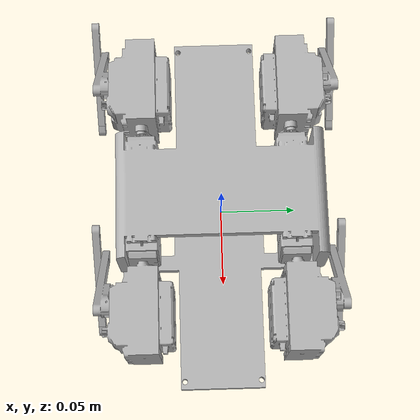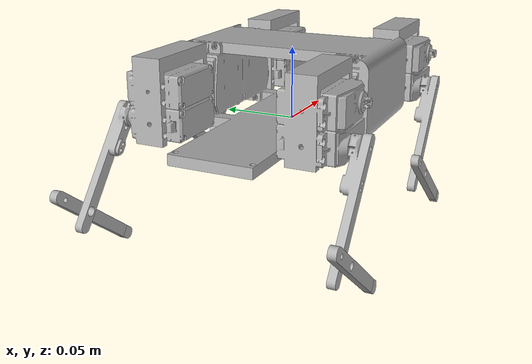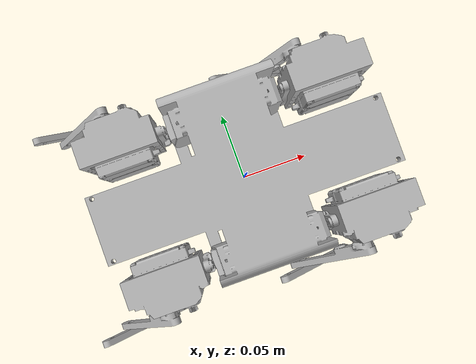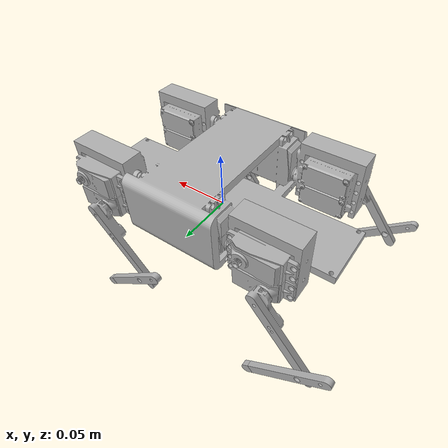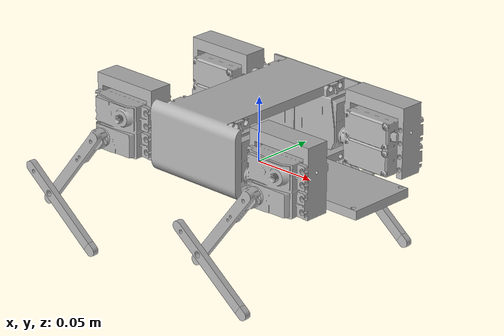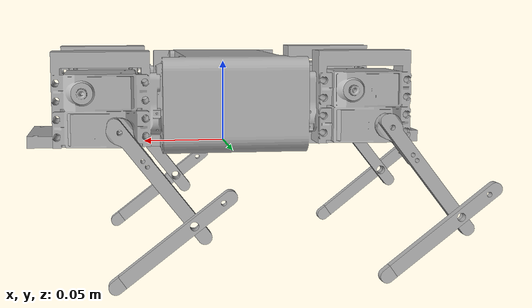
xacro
<?xml version="1.0" ?>
<robot name="robot_sim" xmlns:xacro="http://www.ros.org/wiki/xacro">

<xacro:include filename="$(find robot_sim_description)/urdf/materials.xacro" />
<xacro:include filename="$(find robot_sim_description)/urdf/robot_sim.trans" />
<xacro:include filename="$(find robot_sim_description)/urdf/robot_sim.gazebo" />
<link name="base_link">
  <inertial>
    <origin xyz="-0.0005252204596031618 -0.00019184175566821615 0.02372203813710473" rpy="0 0 0"/>
    <mass value="1.0"/>
    <inertia ixx="0.006081" iyy="0.005366" izz="0.00968" ixy="1e-06" iyz="-2.7e-05" ixz="1.4e-05"/>
  </inertial>
  <visual>
    <origin xyz="0 0 0" rpy="0 0 0"/>
    <geometry>
      <mesh filename="package://robot_sim_description/meshes/base_link.stl" scale="0.001 0.001 0.001"/>
    </geometry>
    <material name="silver"/>
  </visual>
  <collision>
    <origin xyz="0 0 0" rpy="0 0 0"/>
    <geometry>
      <mesh filename="package://robot_sim_description/meshes/base_link.stl" scale="0.001 0.001 0.001"/>
    </geometry>
  </collision>
</link>

<link name="lf_hipp_1">
  <inertial>
    <origin xyz="0.03015331538259277 0.002186531069731129 0.011451897963831191" rpy="0 0 0"/>
    <mass value="0.25"/>
    <inertia ixx="0.000207" iyy="0.000267" izz="0.000208" ixy="-1e-06" iyz="2e-06" ixz="-1e-06"/>
  </inertial>
  <visual>
    <origin xyz="-0.044687 -0.047373 -0.017674" rpy="0 0 0"/>
    <geometry>
      <mesh filename="package://robot_sim_description/meshes/lf_hipp_1.stl" scale="0.001 0.001 0.001"/>
    </geometry>
    <material name="silver"/>
  </visual>
  <collision>
    <origin xyz="-0.044687 -0.047373 -0.017674" rpy="0 0 0"/>
    <geometry>
      <mesh filename="package://robot_sim_description/meshes/lf_hipp_1.stl" scale="0.001 0.001 0.001"/>
    </geometry>
  </collision>
</link>

<link name="rf_hipp_1">
  <inertial>
    <origin xyz="0.03015037337157648 -0.0007413119719827249 0.011482275702380054" rpy="0 0 0"/>
    <mass value="0.25"/>
    <inertia ixx="0.000207" iyy="0.000267" izz="0.000208" ixy="0.0" iyz="-3e-06" ixz="-1e-06"/>
  </inertial>
  <visual>
    <origin xyz="-0.044687 0.051374 -0.017678" rpy="0 0 0"/>
    <geometry>
      <mesh filename="package://robot_sim_description/meshes/rf_hipp_1.stl" scale="0.001 0.001 0.001"/>
    </geometry>
    <material name="silver"/>
  </visual>
  <collision>
    <origin xyz="-0.044687 0.051374 -0.017678" rpy="0 0 0"/>
    <geometry>
      <mesh filename="package://robot_sim_description/meshes/rf_hipp_1.stl" scale="0.001 0.001 0.001"/>
    </geometry>
  </collision>
</link>

<link name="lh_hipp_1">
  <inertial>
    <origin xyz="-0.029856922704473474 0.0020206181030268666 0.011482293331725565" rpy="0 0 0"/>
    <mass value="0.25"/>
    <inertia ixx="0.000207" iyy="0.000267" izz="0.000208" ixy="1e-06" iyz="3e-06" ixz="0.0"/>
  </inertial>
  <visual>
    <origin xyz="0.046404 -0.047373 -0.017674" rpy="0 0 0"/>
    <geometry>
      <mesh filename="package://robot_sim_description/meshes/lh_hipp_1.stl" scale="0.001 0.001 0.001"/>
    </geometry>
    <material name="silver"/>
  </visual>
  <collision>
    <origin xyz="0.046404 -0.047373 -0.017674" rpy="0 0 0"/>
    <geometry>
      <mesh filename="package://robot_sim_description/meshes/lh_hipp_1.stl" scale="0.001 0.001 0.001"/>
    </geometry>
  </collision>
</link>

<link name="rh_hipp_1">
  <inertial>
    <origin xyz="-0.02985701671843094 -0.0007331831610426498 0.011482821283024747" rpy="0 0 0"/>
    <mass value="0.25"/>
    <inertia ixx="0.000207" iyy="0.000267" izz="0.000208" ixy="-0.0" iyz="-3e-06" ixz="0.0"/>
  </inertial>
  <visual>
    <origin xyz="0.046404 0.051374 -0.017678" rpy="0 0 0"/>
    <geometry>
      <mesh filename="package://robot_sim_description/meshes/rh_hipp_1.stl" scale="0.001 0.001 0.001"/>
    </geometry>
    <material name="silver"/>
  </visual>
  <collision>
    <origin xyz="0.046404 0.051374 -0.017678" rpy="0 0 0"/>
    <geometry>
      <mesh filename="package://robot_sim_description/meshes/rh_hipp_1.stl" scale="0.001 0.001 0.001"/>
    </geometry>
  </collision>
</link>

<link name="lf_up_1">
  <inertial>
    <origin xyz="-0.016419062921313177 0.003637269753796246 -0.02678707336544945" rpy="0 0 0"/>
    <mass value="0.0625"/>
    <inertia ixx="0.001" iyy="0.001" izz="0.001" ixy="0.0" iyz="0.0" ixz="0.0"/>
  </inertial>
  <visual>
    <origin xyz="-0.065361 -0.074642 -0.01539" rpy="0 0 0"/>
    <geometry>
      <mesh filename="package://robot_sim_description/meshes/lf_up_1.stl" scale="0.001 0.001 0.001"/>
    </geometry>
    <material name="silver"/>
  </visual>
  <collision>
    <origin xyz="-0.065361 -0.074642 -0.01539" rpy="0 0 0"/>
    <geometry>
      <mesh filename="package://robot_sim_description/meshes/lf_up_1.stl" scale="0.001 0.001 0.001"/>
    </geometry>
  </collision>
</link>

<link name="rf_up_1">
  <inertial>
    <origin xyz="-0.0164200310998035 -0.003944072054624034 -0.026733120225738486" rpy="0 0 0"/>
    <mass value="0.0625"/>
    <inertia ixx="0.001" iyy="0.001" izz="0.001" ixy="0.0" iyz="0.0" ixz="0.0"/>
  </inertial>
  <visual>
    <origin xyz="-0.065361 0.077374 -0.01579" rpy="0 0 0"/>
    <geometry>
      <mesh filename="package://robot_sim_description/meshes/rf_up_1.stl" scale="0.001 0.001 0.001"/>
    </geometry>
    <material name="silver"/>
  </visual>
  <collision>
    <origin xyz="-0.065361 0.077374 -0.01579" rpy="0 0 0"/>
    <geometry>
      <mesh filename="package://robot_sim_description/meshes/rf_up_1.stl" scale="0.001 0.001 0.001"/>
    </geometry>
  </collision>
</link>

<link name="lh_up_1">
  <inertial>
    <origin xyz="-0.016340315083238258 0.003944463350645688 -0.026737906931428364" rpy="0 0 0"/>
    <mass value="0.0625"/>
    <inertia ixx="0.001" iyy="0.001" izz="0.001" ixy="0.0" iyz="0.0" ixz="0.0"/>
  </inertial>
  <visual>
    <origin xyz="0.08673 -0.074672 -0.015786" rpy="0 0 0"/>
    <geometry>
      <mesh filename="package://robot_sim_description/meshes/lh_up_1.stl" scale="0.001 0.001 0.001"/>
    </geometry>
    <material name="silver"/>
  </visual>
  <collision>
    <origin xyz="0.08673 -0.074672 -0.015786" rpy="0 0 0"/>
    <geometry>
      <mesh filename="package://robot_sim_description/meshes/lh_up_1.stl" scale="0.001 0.001 0.001"/>
    </geometry>
  </collision>
</link>

<link name="rh_up_1">
  <inertial>
    <origin xyz="-0.016686433486496274 -0.003958453231412792 -0.026710968347183412" rpy="0 0 0"/>
    <mass value="0.0625"/>
    <inertia ixx="0.001" iyy="0.001" izz="0.001" ixy="0.0" iyz="0.0" ixz="0.0"/>
  </inertial>
  <visual>
    <origin xyz="0.08673 0.077375 -0.015807" rpy="0 0 0"/>
    <geometry>
      <mesh filename="package://robot_sim_description/meshes/rh_up_1.stl" scale="0.001 0.001 0.001"/>
    </geometry>
    <material name="silver"/>
  </visual>
  <collision>
    <origin xyz="0.08673 0.077375 -0.015807" rpy="0 0 0"/>
    <geometry>
      <mesh filename="package://robot_sim_description/meshes/rh_up_1.stl" scale="0.001 0.001 0.001"/>
    </geometry>
  </collision>
</link>

<link name="lf_foot_1">
  <inertial>
    <origin xyz="0.003146149042842633 -4.0777872519534575e-05 -0.0023908828751956906" rpy="0 0 0"/>
    <mass value="0.0625"/>
    <inertia ixx="0.0001" iyy="0.0001" izz="0.0001" ixy="-0.0" iyz="-0.0" ixz="0.0"/>
  </inertial>
  <visual>
    <origin xyz="-0.065198 -0.083946 0.067164" rpy="0 0 0"/>
    <geometry>
      <mesh filename="package://robot_sim_description/meshes/lf_foot_1.stl" scale="0.001 0.001 0.001"/>
    </geometry>
    <material name="silver"/>
  </visual>
  <collision>
    <origin xyz="-0.065198 -0.083946 0.067164" rpy="0 0 0"/>
    <geometry>
      <mesh filename="package://robot_sim_description/meshes/lf_foot_1.stl" scale="0.001 0.001 0.001"/>
    </geometry>
  </collision>
</link>

<link name="rf_foot_1">
  <inertial>
    <origin xyz="0.003146563459573884 5.3378327768291434e-05 -0.0023910133980219184" rpy="0 0 0"/>
    <mass value="0.0625"/>
    <inertia ixx="0.0001" iyy="0.0001" izz="0.0001" ixy="-0.0" iyz="0.0" ixz="0.0"/>
  </inertial>
  <visual>
    <origin xyz="-0.064738 0.087874 0.066283" rpy="0 0 0"/>
    <geometry>
      <mesh filename="package://robot_sim_description/meshes/rf_foot_1.stl" scale="0.001 0.001 0.001"/>
    </geometry>
    <material name="silver"/>
  </visual>
  <collision>
    <origin xyz="-0.064738 0.087874 0.066283" rpy="0 0 0"/>
    <geometry>
      <mesh filename="package://robot_sim_description/meshes/rf_foot_1.stl" scale="0.001 0.001 0.001"/>
    </geometry>
  </collision>
</link>

<link name="lh_foot_1">
  <inertial>
    <origin xyz="0.0031466132562136817 5.379185311012169e-05 -0.002390894290727974" rpy="0 0 0"/>
    <mass value="0.0625"/>
    <inertia ixx="0.0001" iyy="0.0001" izz="0.0001" ixy="-0.0" iyz="0.0" ixz="0.0"/>
  </inertial>
  <visual>
    <origin xyz="0.08771 -0.085172 0.066059" rpy="0 0 0"/>
    <geometry>
      <mesh filename="package://robot_sim_description/meshes/lh_foot_1.stl" scale="0.001 0.001 0.001"/>
    </geometry>
    <material name="silver"/>
  </visual>
  <collision>
    <origin xyz="0.08771 -0.085172 0.066059" rpy="0 0 0"/>
    <geometry>
      <mesh filename="package://robot_sim_description/meshes/lh_foot_1.stl" scale="0.001 0.001 0.001"/>
    </geometry>
  </collision>
</link>

<link name="rh_foot_1">
  <inertial>
    <origin xyz="0.0031468710440486353 4.940379671491968e-05 -0.0023912075919742537" rpy="0 0 0"/>
    <mass value="0.0625"/>
    <inertia ixx="0.0001" iyy="0.0001" izz="0.0001" ixy="-0.0" iyz="0.0" ixz="0.0"/>
  </inertial>
  <visual>
    <origin xyz="0.088419 0.087931 0.066223" rpy="0 0 0"/>
    <geometry>
      <mesh filename="package://robot_sim_description/meshes/rh_foot_1.stl" scale="0.001 0.001 0.001"/>
    </geometry>
    <material name="silver"/>
  </visual>
  <collision>
    <origin xyz="0.088419 0.087931 0.066223" rpy="0 0 0"/>
    <geometry>
      <mesh filename="package://robot_sim_description/meshes/rh_foot_1.stl" scale="0.001 0.001 0.001"/>
    </geometry>
  </collision>
</link>

<link name="lf_low_1">
  <inertial>
    <origin xyz="0.009183069925470574 0.0023976567053376058 -0.007108956563643944" rpy="0 0 0"/>
    <mass value="0.125"/>
    <inertia ixx="0.001" iyy="0.001" izz="0.001" ixy="0.0" iyz="0.0" ixz="0.0"/>
  </inertial>
  <visual>
    <origin xyz="-0.025556 -0.08189 0.036525" rpy="0 0 0"/>
    <geometry>
      <mesh filename="package://robot_sim_description/meshes/lf_low_1.stl" scale="0.001 0.001 0.001"/>
    </geometry>
    <material name="silver"/>
  </visual>
  <collision>
    <origin xyz="-0.025556 -0.08189 0.036525" rpy="0 0 0"/>
    <geometry>
      <mesh filename="package://robot_sim_description/meshes/lf_low_1.stl" scale="0.001 0.001 0.001"/>
    </geometry>
  </collision>
</link>

<link name="rf_low_1">
  <inertial>
    <origin xyz="0.008957472165061098 -0.0025000107553799916 -0.006903547188052195" rpy="0 0 0"/>
    <mass value="0.125"/>
    <inertia ixx="0.001" iyy="0.001" izz="0.001" ixy="0.0" iyz="0.0" ixz="0.0"/>
  </inertial>
  <visual>
    <origin xyz="-0.025541 0.085374 0.036003" rpy="0 0 0"/>
    <geometry>
      <mesh filename="package://robot_sim_description/meshes/rf_low_1.stl" scale="0.001 0.001 0.001"/>
    </geometry>
    <material name="silver"/>
  </visual>
  <collision>
    <origin xyz="-0.025541 0.085374 0.036003" rpy="0 0 0"/>
    <geometry>
      <mesh filename="package://robot_sim_description/meshes/rf_low_1.stl" scale="0.001 0.001 0.001"/>
    </geometry>
  </collision>
</link>

<link name="lh_low_1">
  <inertial>
    <origin xyz="0.008946743217155245 0.0025004027699619402 -0.0069063248962129495" rpy="0 0 0"/>
    <mass value="0.125"/>
    <inertia ixx="0.001" iyy="0.001" izz="0.001" ixy="0.0" iyz="0.0" ixz="0.0"/>
  </inertial>
  <visual>
    <origin xyz="0.126873 -0.082672 0.035757" rpy="0 0 0"/>
    <geometry>
      <mesh filename="package://robot_sim_description/meshes/lh_low_1.stl" scale="0.001 0.001 0.001"/>
    </geometry>
    <material name="silver"/>
  </visual>
  <collision>
    <origin xyz="0.126873 -0.082672 0.035757" rpy="0 0 0"/>
    <geometry>
      <mesh filename="package://robot_sim_description/meshes/lh_low_1.stl" scale="0.001 0.001 0.001"/>
    </geometry>
  </collision>
</link>

<link name="rh_low_1">
  <inertial>
    <origin xyz="0.008855525446896786 -0.0025045709939809507 -0.0070043673693002545" rpy="0 0 0"/>
    <mass value="0.125"/>
    <inertia ixx="0.001" iyy="0.001" izz="0.001" ixy="0.0" iyz="0.0" ixz="0.0"/>
  </inertial>
  <visual>
    <origin xyz="0.127203 0.08541 0.035472" rpy="0 0 0"/>
    <geometry>
      <mesh filename="package://robot_sim_description/meshes/rh_low_1.stl" scale="0.001 0.001 0.001"/>
    </geometry>
    <material name="silver"/>
  </visual>
  <collision>
    <origin xyz="0.127203 0.08541 0.035472" rpy="0 0 0"/>
    <geometry>
      <mesh filename="package://robot_sim_description/meshes/rh_low_1.stl" scale="0.001 0.001 0.001"/>
    </geometry>
  </collision>
</link>

<joint name="lf_hip_joint" type="revolute">
  <origin xyz="0.044687 0.047373 0.017674" rpy="0 0 0"/>
  <parent link="base_link"/>
  <child link="lf_hipp_1"/>
  <axis xyz="1.0 0.0 0.0"/>
  <limit upper="0.57" lower="-0.57" effort="100" velocity="100"/>
</joint>

<joint name="rf_hip_joint" type="revolute">
  <origin xyz="0.044687 -0.051374 0.017678" rpy="0 0 0"/>
  <parent link="base_link"/>
  <child link="rf_hipp_1"/>
  <axis xyz="1.0 0.0 0.0"/>
  <limit upper="0.57" lower="-0.57" effort="100" velocity="100"/>
</joint>

<joint name="lh_hip_joint" type="revolute">
  <origin xyz="-0.046404 0.047373 0.017674" rpy="0 0 0"/>
  <parent link="base_link"/>
  <child link="lh_hipp_1"/>
  <axis xyz="1.0 0.0 0.0"/>
  <limit upper="0.57" lower="-0.57" effort="100" velocity="100"/>
</joint>

<joint name="rh_hip_joint" type="revolute">
  <origin xyz="-0.046404 -0.051374 0.017678" rpy="0 0 0"/>
  <parent link="base_link"/>
  <child link="rh_hipp_1"/>
  <axis xyz="1.0 0.0 0.0"/>
  <limit upper="0.57" lower="-0.57" effort="100" velocity="100"/>
</joint>

<joint name="lf_upper_leg_joint" type="revolute">
  <origin xyz="0.020674 0.027269 -0.002284" rpy="0 0 0"/>
  <parent link="lf_hipp_1"/>
  <child link="lf_up_1"/>
  <axis xyz="0.0 1.0 0.0"/>
  <limit upper="0.62" lower="-0.62" effort="100" velocity="100"/>
</joint>

<joint name="rf_upper_leg_joint" type="revolute">
  <origin xyz="0.020674 -0.026 -0.001888" rpy="0 0 0"/>
  <parent link="rf_hipp_1"/>
  <child link="rf_up_1"/>
  <axis xyz="0.0 1.0 0.0"/>
  <limit upper="0.62" lower="-0.62" effort="100" velocity="100"/>
</joint>

<joint name="lh_upper_leg_joint" type="revolute">
  <origin xyz="-0.040326 0.027299 -0.001888" rpy="0 0 0"/>
  <parent link="lh_hipp_1"/>
  <child link="lh_up_1"/>
  <axis xyz="0.0 1.0 0.0"/>
  <limit upper="0.62" lower="-0.62" effort="100" velocity="100"/>
</joint>

<joint name="rh_upper_leg_joint" type="revolute">
  <origin xyz="-0.040326 -0.026001 -0.001871" rpy="0 0 0"/>
  <parent link="rh_hipp_1"/>
  <child link="rh_up_1"/>
  <axis xyz="0.0 1.0 0.0"/>
  <limit upper="0.62" lower="-0.62" effort="100" velocity="100"/>
</joint>

<joint name="rig_lf" type="fixed">
  <origin xyz="0.039642 0.002056 -0.030639" rpy="0 0 0"/>
  <parent link="lf_low_1"/>
  <child link="lf_foot_1"/>
</joint>

<joint name="rig_rf" type="fixed">
  <origin xyz="0.039197 -0.0025 -0.03028" rpy="0 0 0"/>
  <parent link="rf_low_1"/>
  <child link="rf_foot_1"/>
</joint>

<joint name="rig_lh" type="fixed">
  <origin xyz="0.039163 0.0025 -0.030302" rpy="0 0 0"/>
  <parent link="lh_low_1"/>
  <child link="lh_foot_1"/>
</joint>

<joint name="rig_rh" type="fixed">
  <origin xyz="0.038784 -0.002521 -0.030751" rpy="0 0 0"/>
  <parent link="rh_low_1"/>
  <child link="rh_foot_1"/>
</joint>

<joint name="lf_lower_leg_joint" type="revolute">
  <origin xyz="-0.039805 0.007248 -0.051915" rpy="0 0 0"/>
  <parent link="lf_up_1"/>
  <child link="lf_low_1"/>
  <axis xyz="0.0 -1.0 0.0"/>
  <limit upper="0.610865" lower="-0.610865" effort="100" velocity="100"/>
</joint>

<joint name="rf_lower_leg_joint" type="revolute">
  <origin xyz="-0.03982 -0.008 -0.051793" rpy="0 0 0"/>
  <parent link="rf_up_1"/>
  <child link="rf_low_1"/>
  <axis xyz="0.0 1.0 0.0"/>
  <limit upper="0.610865" lower="-0.610865" effort="100" velocity="100"/>
</joint>

<joint name="lh_lower_leg_joint" type="revolute">
  <origin xyz="-0.040143 0.008 -0.051543" rpy="0 0 0"/>
  <parent link="lh_up_1"/>
  <child link="lh_low_1"/>
  <axis xyz="0.0 -1.0 0.0"/>
  <limit upper="0.610865" lower="-0.610865" effort="100" velocity="100"/>
</joint>

<joint name="rh_lower_leg_joint" type="revolute">
  <origin xyz="-0.040473 -0.008035 -0.051279" rpy="0 0 0"/>
  <parent link="rh_up_1"/>
  <child link="rh_low_1"/>
  <axis xyz="0.0 1.0 0.0"/>
  <limit upper="0.610865" lower="-0.610865" effort="100" velocity="100"/>
</joint>

</robot>

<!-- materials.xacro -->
<robot name="robot_sim" xmlns:xacro="http://www.ros.org/wiki/xacro" >

<material name="silver">
  <color rgba="0.700 0.700 0.700 1.000"/>
</material>

</robot>

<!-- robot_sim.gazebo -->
<robot name="robot_sim" xmlns:xacro="http://www.ros.org/wiki/xacro" >

<xacro:property name="body_color" value="Gazebo/Silver" />

<gazebo>
  <plugin name="control" filename="libgazebo_ros_control.so"/>
</gazebo>
<gazebo reference="base_link">
  <material>${body_color}</material>
  <mu1>0.2</mu1>
  <mu2>0.2</mu2>
  <selfCollide>false</selfCollide>
  <gravity>true</gravity>
</gazebo>

<gazebo reference="lf_hipp_1">
  <material>${body_color}</material>
  <mu1>0.2</mu1>
  <mu2>0.2</mu2>
  <selfCollide>false</selfCollide>
</gazebo>

<gazebo reference="rf_hipp_1">
  <material>${body_color}</material>
  <mu1>0.2</mu1>
  <mu2>0.2</mu2>
  <selfCollide>false</selfCollide>
</gazebo>

<gazebo reference="lh_hipp_1">
  <material>${body_color}</material>
  <mu1>0.2</mu1>
  <mu2>0.2</mu2>
  <selfCollide>false</selfCollide>
</gazebo>

<gazebo reference="rh_hipp_1">
  <material>${body_color}</material>
  <mu1>0.2</mu1>
  <mu2>0.2</mu2>
  <selfCollide>false</selfCollide>
</gazebo>

<gazebo reference="lf_up_1">
  <material>${body_color}</material>
  <mu1>0.2</mu1>
  <mu2>0.2</mu2>
  <selfCollide>false</selfCollide>
</gazebo>

<gazebo reference="rf_up_1">
  <material>${body_color}</material>
  <mu1>0.2</mu1>
  <mu2>0.2</mu2>
  <selfCollide>false</selfCollide>
</gazebo>

<gazebo reference="lh_up_1">
  <material>${body_color}</material>
  <mu1>0.2</mu1>
  <mu2>0.2</mu2>
  <selfCollide>false</selfCollide>
</gazebo>

<gazebo reference="rh_up_1">
  <material>${body_color}</material>
  <mu1>0.2</mu1>
  <mu2>0.2</mu2>
  <selfCollide>false</selfCollide>
</gazebo>

<gazebo reference="lf_foot_1">
  <material>${body_color}</material>
  <mu1>1.5</mu1>
  <mu2>1.5</mu2>
  <selfCollide>false</selfCollide>
  <kp>1000000.0</kp>
  <kd>1.0</kd>
  <minDepth>0.001</minDepth>
  <maxVel>0.1</maxVel>
</gazebo>

<gazebo reference="rf_foot_1">
  <material>${body_color}</material>
  <mu1>1.5</mu1>
  <mu2>1.5</mu2>
  <selfCollide>false</selfCollide>
  <kp>1000000.0</kp>
  <kd>1.0</kd>
  <minDepth>0.001</minDepth>
  <maxVel>0.1</maxVel>
</gazebo>

<gazebo reference="lh_foot_1">
  <material>${body_color}</material>
  <mu1>1.5</mu1>
  <mu2>1.5</mu2>
  <selfCollide>false</selfCollide>
  <kp>1000000.0</kp>
  <kd>1.0</kd>
  <minDepth>0.001</minDepth>
  <maxVel>0.1</maxVel>
</gazebo>

<gazebo reference="rh_foot_1">
  <material>${body_color}</material>
  <mu1>1.5</mu1>
  <mu2>1.5</mu2>
  <selfCollide>false</selfCollide>
  <kp>1000000.0</kp>
  <kd>1.0</kd>
  <minDepth>0.001</minDepth>
  <maxVel>0.1</maxVel>
</gazebo>

<gazebo reference="lf_low_1">
  <material>${body_color}</material>
  <mu1>0.2</mu1>
  <mu2>0.2</mu2>
  <selfCollide>false</selfCollide>
</gazebo>

<gazebo reference="rf_low_1">
  <material>${body_color}</material>
  <mu1>0.2</mu1>
  <mu2>0.2</mu2>
  <selfCollide>false</selfCollide>
</gazebo>

<gazebo reference="lh_low_1">
  <material>${body_color}</material>
  <mu1>0.2</mu1>
  <mu2>0.2</mu2>
  <selfCollide>false</selfCollide>
</gazebo>

<gazebo reference="rh_low_1">
  <material>${body_color}</material>
  <mu1>0.2</mu1>
  <mu2>0.2</mu2>
  <selfCollide>false</selfCollide>
</gazebo>

<gazebo reference="base_link">
    <gravity>true</gravity>
    <sensor name="imu_sensor" type="imu">
      <always_on>true</always_on>
      <update_rate>100</update_rate>
      <visualize>true</visualize>
      <topic>__default_topic__</topic>
      <plugin filename="libgazebo_ros_imu_sensor.so" name="imu_plugin">
        <topicName>imu/data</topicName>
        <bodyName>base_link</bodyName>
        <updateRateHZ>100.0</updateRateHZ>
        <gaussianNoise>0.0</gaussianNoise>
        <xyzOffset>0 0 0</xyzOffset>
        <rpyOffset>0 0 0</rpyOffset>
        <frameName>base_link</frameName>
        <initialOrientationAsReference>false</initialOrientationAsReference>
      </plugin>
      <pose>0 0 0 0 0 0</pose>
    </sensor>
  </gazebo>

</robot>
